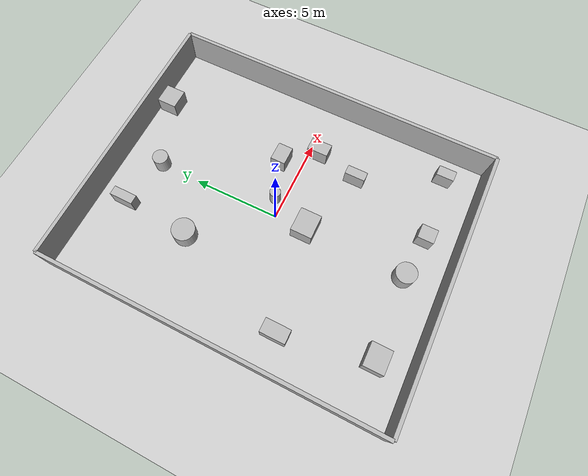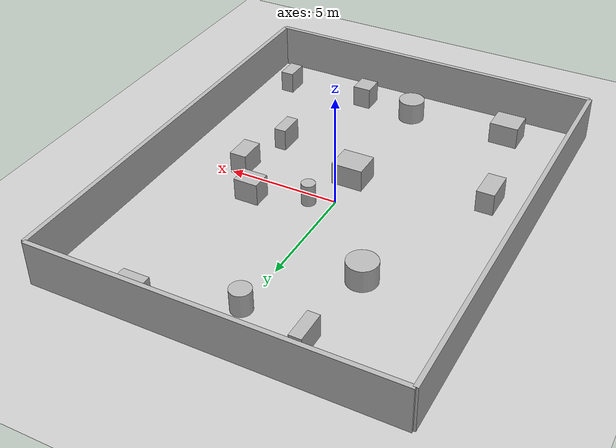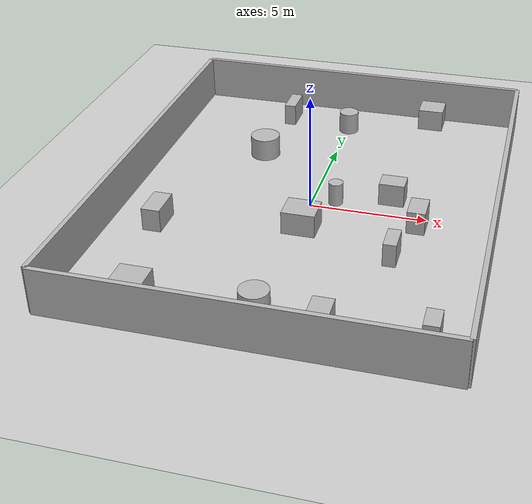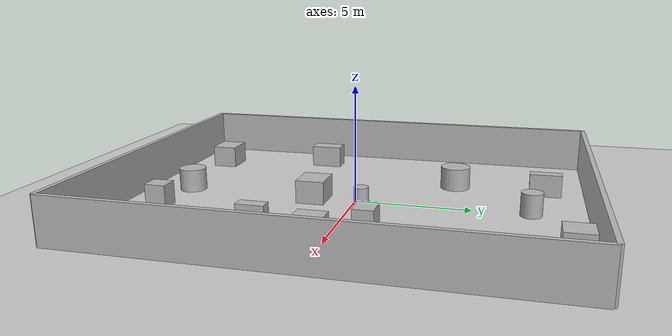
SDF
<?xml version="1.0"?>
<sdf version="1.6">
  <world name="env_63">

    <include><uri>model://ground_plane</uri></include>
    <include><uri>model://sun</uri></include>

    <!-- WALLS -->
    <model name="wall_north"><static>true</static><pose>0 9.732895685683289 1 0 0 0</pose>
      <link name="link"><collision name="collision">
        <geometry><box><size>15.638834853587054 0.2 2</size></box></geometry>
      </collision><visual name="visual">
        <geometry><box><size>15.638834853587054 0.2 2</size></box></geometry>
      </visual></link>
    </model>

    <model name="wall_south"><static>true</static><pose>0 -9.732895685683289 1 0 0 0</pose>
      <link name="link"><collision name="collision">
        <geometry><box><size>15.638834853587054 0.2 2</size></box></geometry>
      </collision><visual name="visual">
        <geometry><box><size>15.638834853587054 0.2 2</size></box></geometry>
      </visual></link>
    </model>

    <model name="wall_east"><static>true</static><pose>7.819417426793527 0 1 0 0 1.57</pose>
      <link name="link"><collision name="collision">
        <geometry><box><size>19.465791371366578 0.2 2</size></box></geometry>
      </collision><visual name="visual">
        <geometry><box><size>19.465791371366578 0.2 2</size></box></geometry>
      </visual></link>
    </model>

    <model name="wall_west"><static>true</static><pose>-7.819417426793527 0 1 0 0 1.57</pose>
      <link name="link"><collision name="collision">
        <geometry><box><size>19.465791371366578 0.2 2</size></box></geometry>
      </collision><visual name="visual">
        <geometry><box><size>19.465791371366578 0.2 2</size></box></geometry>
      </visual></link>
    </model>

    <!-- SENSOR -->

    <model name="lidar_sensor">
      <static>true</static>
      <pose>-0.5378200548244738 -1.6962833453041224 0.4 0 0 0</pose>
      <link name="link">
        <sensor name="lidar" type="ray">
          <pose>0 0 0 0 0 0</pose>
          <visualize>true</visualize>
          <always_on>true</always_on>
          <update_rate>10</update_rate>
          <ray>
            <scan><horizontal>
              <samples>720</samples>
              <resolution>1</resolution>
              <min_angle>-3.14159</min_angle>
              <max_angle>3.14159</max_angle>
            </horizontal></scan>
            <range><min>0.15</min><max>20.0</max><resolution>0.01</resolution></range>
          </ray>
          <plugin name="lidar_plugin" filename="liblidar_plugin.so"/>
        </sensor>
      </link>
    </model>

    <!-- OBSTACLES -->

    <model name="obstacle_0">
      <static>true</static>
      <pose>0.09538157939311365 -1.8197355801625772 0.5 0 0 0</pose>
      <link name="link">
        <collision name="collision">
          <geometry><box><size>1.41 1.23 1.0</size></box></geometry>
        </collision>
        <visual name="visual">
          <geometry><box><size>1.41 1.23 1.0</size></box></geometry>
        </visual>
      </link>
    </model>

    <model name="obstacle_1">
      <static>true</static>
      <pose>-0.08500946867995207 -7.665525078349339 0.5 0 0 0</pose>
      <link name="link">
        <collision name="collision">
          <geometry><cylinder><radius>0.59</radius><length>1.0</length></cylinder></geometry>
        </collision>
        <visual name="visual">
          <geometry><cylinder><radius>0.59</radius><length>1.0</length></cylinder></geometry>
        </visual>
      </link>
    </model>

    <model name="obstacle_2">
      <static>true</static>
      <pose>4.074155350239873 -3.082202224188027 0.5 0 0 0</pose>
      <link name="link">
        <collision name="collision">
          <geometry><box><size>0.54 1.17 1.0</size></box></geometry>
        </collision>
        <visual name="visual">
          <geometry><box><size>0.54 1.17 1.0</size></box></geometry>
        </visual>
      </link>
    </model>

    <model name="obstacle_3">
      <static>true</static>
      <pose>-5.769724958694995 -2.870499552608252 0.5 0 0 0</pose>
      <link name="link">
        <collision name="collision">
          <geometry><box><size>0.79 1.43 1.0</size></box></geometry>
        </collision>
        <visual name="visual">
          <geometry><box><size>0.79 1.43 1.0</size></box></geometry>
        </visual>
      </link>
    </model>

    <model name="obstacle_4">
      <static>true</static>
      <pose>0.03929769392115823 7.378082121062654 0.5 0 0 0</pose>
      <link name="link">
        <collision name="collision">
          <geometry><cylinder><radius>0.45</radius><length>1.0</length></cylinder></geometry>
        </collision>
        <visual name="visual">
          <geometry><cylinder><radius>0.45</radius><length>1.0</length></cylinder></geometry>
        </visual>
      </link>
    </model>

    <model name="obstacle_5">
      <static>true</static>
      <pose>3.884049737228705 8.958083541227307 0.5 0 0 0</pose>
      <link name="link">
        <collision name="collision">
          <geometry><box><size>1.16 1.16 1.0</size></box></geometry>
        </collision>
        <visual name="visual">
          <geometry><box><size>1.16 1.16 1.0</size></box></geometry>
        </visual>
      </link>
    </model>

    <model name="obstacle_6">
      <static>true</static>
      <pose>6.332550361865873 -7.647093254502689 0.5 0 0 0</pose>
      <link name="link">
        <collision name="collision">
          <geometry><box><size>0.61 1.0 1.0</size></box></geometry>
        </collision>
        <visual name="visual">
          <geometry><box><size>0.61 1.0 1.0</size></box></geometry>
        </visual>
      </link>
    </model>

    <model name="obstacle_7">
      <static>true</static>
      <pose>2.4422253220980084 -7.934321337982177 0.5 0 0 0</pose>
      <link name="link">
        <collision name="collision">
          <geometry><box><size>0.83 0.91 1.0</size></box></geometry>
        </collision>
        <visual name="visual">
          <geometry><box><size>0.83 0.91 1.0</size></box></geometry>
        </visual>
      </link>
    </model>

    <model name="obstacle_8">
      <static>true</static>
      <pose>-3.1837472772194557 3.9598452007209914 0.5 0 0 0</pose>
      <link name="link">
        <collision name="collision">
          <geometry><cylinder><radius>0.66</radius><length>1.0</length></cylinder></geometry>
        </collision>
        <visual name="visual">
          <geometry><cylinder><radius>0.66</radius><length>1.0</length></cylinder></geometry>
        </visual>
      </link>
    </model>

    <model name="obstacle_9">
      <static>true</static>
      <pose>4.688044791251218 -0.5334103573809195 0.5 0 0 0</pose>
      <link name="link">
        <collision name="collision">
          <geometry><box><size>0.76 1.21 1.0</size></box></geometry>
        </collision>
        <visual name="visual">
          <geometry><box><size>0.76 1.21 1.0</size></box></geometry>
        </visual>
      </link>
    </model>

    <model name="obstacle_10">
      <static>true</static>
      <pose>-4.7123976536805525 -7.927638518800278 0.5 0 0 0</pose>
      <link name="link">
        <collision name="collision">
          <geometry><box><size>1.3 1.14 1.0</size></box></geometry>
        </collision>
        <visual name="visual">
          <geometry><box><size>1.3 1.14 1.0</size></box></geometry>
        </visual>
      </link>
    </model>

    <model name="obstacle_11">
      <static>true</static>
      <pose>-2.9159799135015962 7.962431754120708 0.5 0 0 0</pose>
      <link name="link">
        <collision name="collision">
          <geometry><box><size>0.53 1.38 1.0</size></box></geometry>
        </collision>
        <visual name="visual">
          <geometry><box><size>0.53 1.38 1.0</size></box></geometry>
        </visual>
      </link>
    </model>

    <model name="obstacle_12">
      <static>true</static>
      <pose>3.334050533559572 1.2433283383828453 0.5 0 0 0</pose>
      <link name="link">
        <collision name="collision">
          <geometry><box><size>1.09 0.86 1.0</size></box></geometry>
        </collision>
        <visual name="visual">
          <geometry><box><size>1.09 0.86 1.0</size></box></geometry>
        </visual>
      </link>
    </model>

    <model name="obstacle_13">
      <static>true</static>
      <pose>0.9954617472660372 0.49953701024809405 0.5 0 0 0</pose>
      <link name="link">
        <collision name="collision">
          <geometry><cylinder><radius>0.31</radius><length>1.0</length></cylinder></geometry>
        </collision>
        <visual name="visual">
          <geometry><cylinder><radius>0.31</radius><length>1.0</length></cylinder></geometry>
        </visual>
      </link>
    </model>

  </world>
</sdf>
